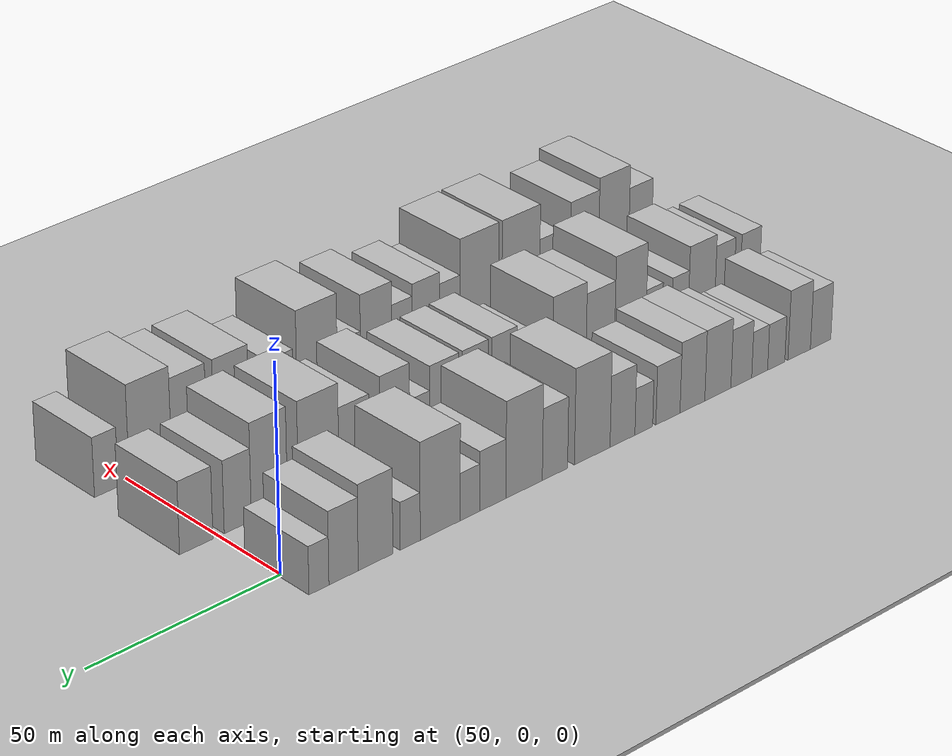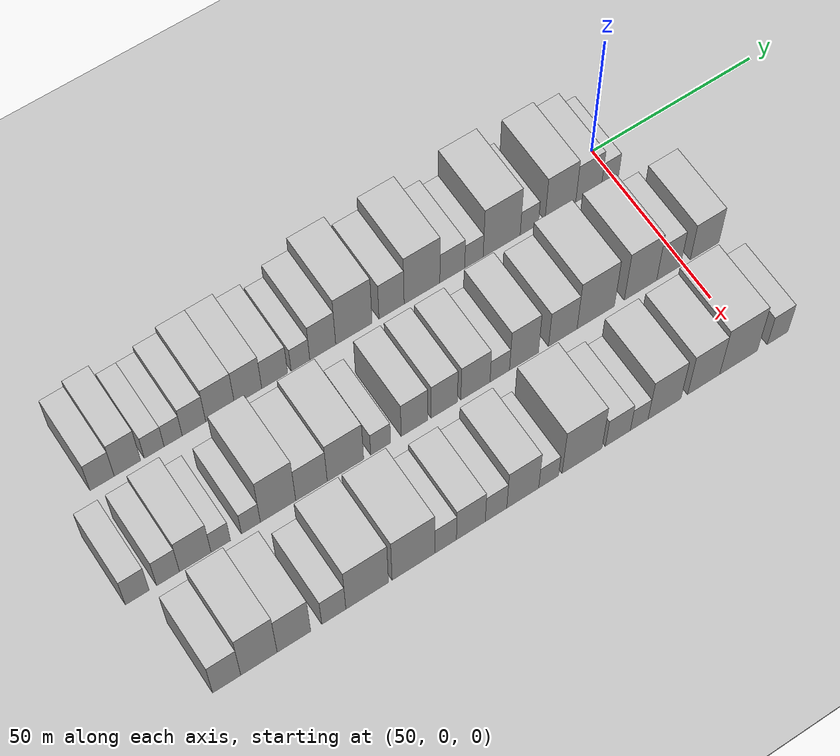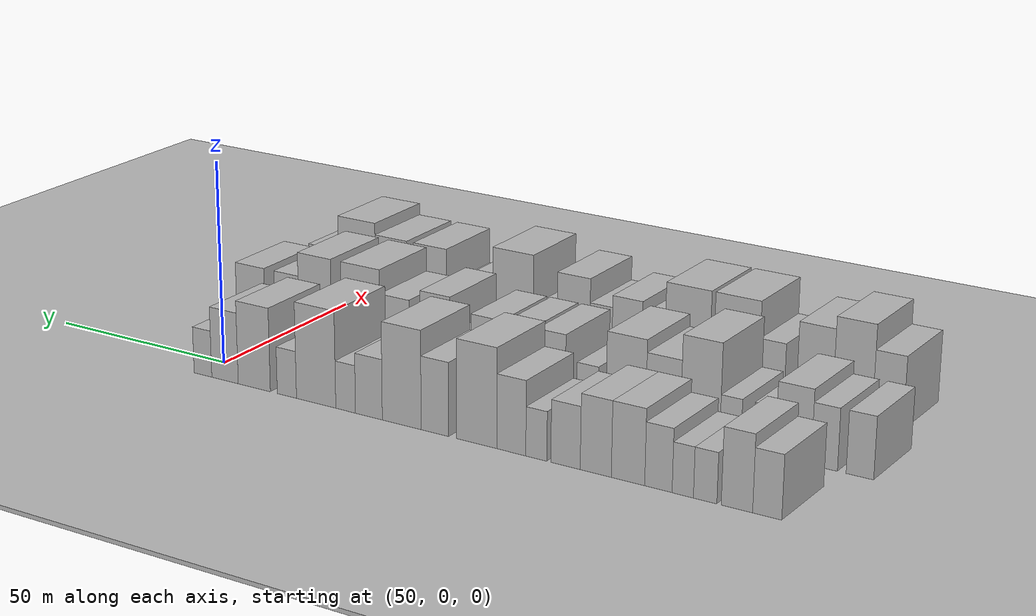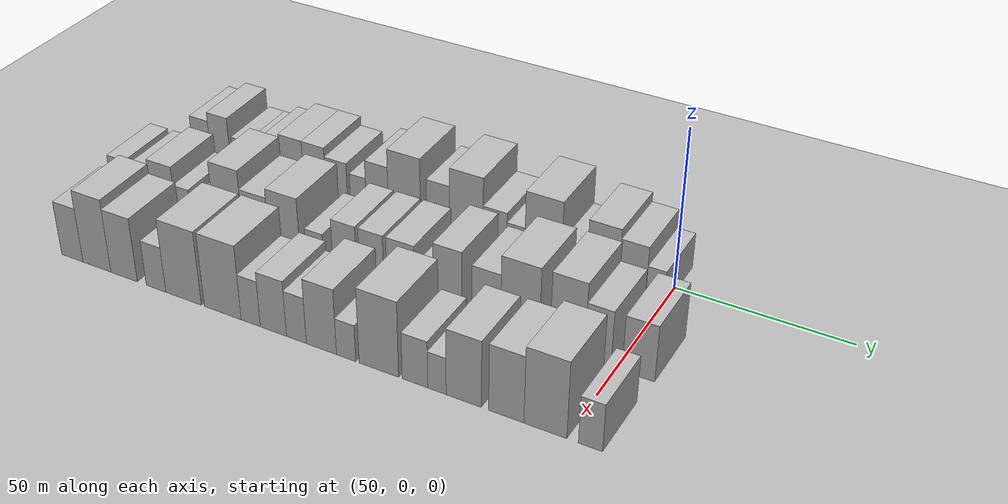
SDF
<sdf version="1.6">
 <world name="default">
  <include><name>ground_plane_1</name><uri>model://HANNAS_ground_plane</uri></include>
  <include>
   <name>ground_plane_2</name>
   <uri>model://HANNAS_ground_plane</uri>
   <pose>100 0 0  0 0 0</pose>
  </include>
  <model name="building_21">
   <static>1</static>
   <pose>50.0000 -148.6712 0 0.000000 0.000000 0.000000</pose>
   <link name="link">
    <pose>0 0 7.50 0 0 0</pose>
    <collision name="collision"><geometry><box><size>20.0000 6.6050 15.0000</size></box></geometry></collision>
    <visual name="visual">
     <cast_shadows>0</cast_shadows>
     <geometry><box><size>20.0000 6.6050 15.0000</size></box></geometry>
     <material>
      <script>
       <uri>model://HANNAS_wall/materials/scripts</uri>
       <uri>model://HANNAS_wall/materials/textures</uri>
       <name>vrc/HANNAS_wall</name>
      </script>
     </material>
    </visual>
   </link>
  </model>
  <model name="building_22">
   <static>1</static>
   <pose>50.0000 -141.7651 0 0.000000 0.000000 0.000000</pose>
   <link name="link">
    <pose>0 0 9.00 0 0 0</pose>
    <collision name="collision"><geometry><box><size>20.0000 7.2073 18.0000</size></box></geometry></collision>
    <visual name="visual">
     <cast_shadows>0</cast_shadows>
     <geometry><box><size>20.0000 7.2073 18.0000</size></box></geometry>
     <material>
      <script>
       <uri>model://HANNAS_wall/materials/scripts</uri>
       <uri>model://HANNAS_wall/materials/textures</uri>
       <name>vrc/HANNAS_wall</name>
      </script>
     </material>
    </visual>
   </link>
  </model>
  <model name="building_23">
   <static>1</static>
   <pose>50.0000 -134.4319 0 0.000000 0.000000 0.000000</pose>
   <link name="link">
    <pose>0 0 6.00 0 0 0</pose>
    <collision name="collision"><geometry><box><size>20.0000 5.4589 12.0000</size></box></geometry></collision>
    <visual name="visual">
     <cast_shadows>0</cast_shadows>
     <geometry><box><size>20.0000 5.4589 12.0000</size></box></geometry>
     <material>
      <script>
       <uri>model://HANNAS_wall/materials/scripts</uri>
       <uri>model://HANNAS_wall/materials/textures</uri>
       <name>vrc/HANNAS_wall</name>
      </script>
     </material>
    </visual>
   </link>
  </model>
  <model name="building_24">
   <static>1</static>
   <pose>50.0000 -129.1912 0 0.000000 0.000000 0.000000</pose>
   <link name="link">
    <pose>0 0 6.00 0 0 0</pose>
    <collision name="collision"><geometry><box><size>20.0000 5.0226 12.0000</size></box></geometry></collision>
    <visual name="visual">
     <cast_shadows>0</cast_shadows>
     <geometry><box><size>20.0000 5.0226 12.0000</size></box></geometry>
     <material>
      <script>
       <uri>model://HANNAS_wall/materials/scripts</uri>
       <uri>model://HANNAS_wall/materials/textures</uri>
       <name>vrc/HANNAS_wall</name>
      </script>
     </material>
    </visual>
   </link>
  </model>
  <model name="building_25">
   <static>1</static>
   <pose>50.0000 -123.4154 0 0.000000 0.000000 0.000000</pose>
   <link name="link">
    <pose>0 0 7.50 0 0 0</pose>
    <collision name="collision"><geometry><box><size>20.0000 6.5289 15.0000</size></box></geometry></collision>
    <visual name="visual">
     <cast_shadows>0</cast_shadows>
     <geometry><box><size>20.0000 6.5289 15.0000</size></box></geometry>
     <material>
      <script>
       <uri>model://HANNAS_wall/materials/scripts</uri>
       <uri>model://HANNAS_wall/materials/textures</uri>
       <name>vrc/HANNAS_wall</name>
      </script>
     </material>
    </visual>
   </link>
  </model>
  <model name="building_26">
   <static>1</static>
   <pose>50.0000 -116.1085 0 0.000000 0.000000 0.000000</pose>
   <link name="link">
    <pose>0 0 9.00 0 0 0</pose>
    <collision name="collision"><geometry><box><size>20.0000 8.0849 18.0000</size></box></geometry></collision>
    <visual name="visual">
     <cast_shadows>0</cast_shadows>
     <geometry><box><size>20.0000 8.0849 18.0000</size></box></geometry>
     <material>
      <script>
       <uri>model://HANNAS_wall/materials/scripts</uri>
       <uri>model://HANNAS_wall/materials/textures</uri>
       <name>vrc/HANNAS_wall</name>
      </script>
     </material>
    </visual>
   </link>
  </model>
  <model name="building_27">
   <static>1</static>
   <pose>50.0000 -108.2516 0 0.000000 0.000000 0.000000</pose>
   <link name="link">
    <pose>0 0 9.00 0 0 0</pose>
    <collision name="collision"><geometry><box><size>20.0000 7.6288 18.0000</size></box></geometry></collision>
    <visual name="visual">
     <cast_shadows>0</cast_shadows>
     <geometry><box><size>20.0000 7.6288 18.0000</size></box></geometry>
     <material>
      <script>
       <uri>model://HANNAS_wall/materials/scripts</uri>
       <uri>model://HANNAS_wall/materials/textures</uri>
       <name>vrc/HANNAS_wall</name>
      </script>
     </material>
    </visual>
   </link>
  </model>
  <model name="building_28">
   <static>1</static>
   <pose>50.0000 -100.7759 0 0.000000 0.000000 0.000000</pose>
   <link name="link">
    <pose>0 0 7.50 0 0 0</pose>
    <collision name="collision"><geometry><box><size>20.0000 7.3226 15.0000</size></box></geometry></collision>
    <visual name="visual">
     <cast_shadows>0</cast_shadows>
     <geometry><box><size>20.0000 7.3226 15.0000</size></box></geometry>
     <material>
      <script>
       <uri>model://HANNAS_wall/materials/scripts</uri>
       <uri>model://HANNAS_wall/materials/textures</uri>
       <name>vrc/HANNAS_wall</name>
      </script>
     </material>
    </visual>
   </link>
  </model>
  <model name="building_29">
   <static>1</static>
   <pose>50.0000 -93.4547 0 0.000000 0.000000 0.000000</pose>
   <link name="link">
    <pose>0 0 6.00 0 0 0</pose>
    <collision name="collision"><geometry><box><size>20.0000 5.3197 12.0000</size></box></geometry></collision>
    <visual name="visual">
     <cast_shadows>0</cast_shadows>
     <geometry><box><size>20.0000 5.3197 12.0000</size></box></geometry>
     <material>
      <script>
       <uri>model://HANNAS_wall/materials/scripts</uri>
       <uri>model://HANNAS_wall/materials/textures</uri>
       <name>vrc/HANNAS_wall</name>
      </script>
     </material>
    </visual>
   </link>
  </model>
  <model name="building_30">
   <static>1</static>
   <pose>50.0000 -87.0762 0 0.000000 0.000000 0.000000</pose>
   <link name="link">
    <pose>0 0 9.00 0 0 0</pose>
    <collision name="collision"><geometry><box><size>20.0000 7.4373 18.0000</size></box></geometry></collision>
    <visual name="visual">
     <cast_shadows>0</cast_shadows>
     <geometry><box><size>20.0000 7.4373 18.0000</size></box></geometry>
     <material>
      <script>
       <uri>model://HANNAS_wall/materials/scripts</uri>
       <uri>model://HANNAS_wall/materials/textures</uri>
       <name>vrc/HANNAS_wall</name>
      </script>
     </material>
    </visual>
   </link>
  </model>
  <model name="building_31">
   <static>1</static>
   <pose>50.0000 -78.0999 0 0.000000 0.000000 0.000000</pose>
   <link name="link">
    <pose>0 0 12.00 0 0 0</pose>
    <collision name="collision"><geometry><box><size>20.0000 10.5155 24.0000</size></box></geometry></collision>
    <visual name="visual">
     <cast_shadows>0</cast_shadows>
     <geometry><box><size>20.0000 10.5155 24.0000</size></box></geometry>
     <material>
      <script>
       <uri>model://HANNAS_wall/materials/scripts</uri>
       <uri>model://HANNAS_wall/materials/textures</uri>
       <name>vrc/HANNAS_wall</name>
      </script>
     </material>
    </visual>
   </link>
  </model>
  <model name="building_32">
   <static>1</static>
   <pose>50.0000 -67.1724 0 0.000000 0.000000 0.000000</pose>
   <link name="link">
    <pose>0 0 9.00 0 0 0</pose>
    <collision name="collision"><geometry><box><size>20.0000 7.3393 18.0000</size></box></geometry></collision>
    <visual name="visual">
     <cast_shadows>0</cast_shadows>
     <geometry><box><size>20.0000 7.3393 18.0000</size></box></geometry>
     <material>
      <script>
       <uri>model://HANNAS_wall/materials/scripts</uri>
       <uri>model://HANNAS_wall/materials/textures</uri>
       <name>vrc/HANNAS_wall</name>
      </script>
     </material>
    </visual>
   </link>
  </model>
  <model name="building_33">
   <static>1</static>
   <pose>50.0000 -58.2505 0 0.000000 0.000000 0.000000</pose>
   <link name="link">
    <pose>0 0 12.00 0 0 0</pose>
    <collision name="collision"><geometry><box><size>20.0000 10.5045 24.0000</size></box></geometry></collision>
    <visual name="visual">
     <cast_shadows>0</cast_shadows>
     <geometry><box><size>20.0000 10.5045 24.0000</size></box></geometry>
     <material>
      <script>
       <uri>model://HANNAS_wall/materials/scripts</uri>
       <uri>model://HANNAS_wall/materials/textures</uri>
       <name>vrc/HANNAS_wall</name>
      </script>
     </material>
    </visual>
   </link>
  </model>
  <model name="building_34">
   <static>1</static>
   <pose>50.0000 -49.3112 0 0.000000 0.000000 0.000000</pose>
   <link name="link">
    <pose>0 0 7.50 0 0 0</pose>
    <collision name="collision"><geometry><box><size>20.0000 7.3740 15.0000</size></box></geometry></collision>
    <visual name="visual">
     <cast_shadows>0</cast_shadows>
     <geometry><box><size>20.0000 7.3740 15.0000</size></box></geometry>
     <material>
      <script>
       <uri>model://HANNAS_wall/materials/scripts</uri>
       <uri>model://HANNAS_wall/materials/textures</uri>
       <name>vrc/HANNAS_wall</name>
      </script>
     </material>
    </visual>
   </link>
  </model>
  <model name="building_35">
   <static>1</static>
   <pose>50.0000 -42.8820 0 0.000000 0.000000 0.000000</pose>
   <link name="link">
    <pose>0 0 6.00 0 0 0</pose>
    <collision name="collision"><geometry><box><size>20.0000 5.4845 12.0000</size></box></geometry></collision>
    <visual name="visual">
     <cast_shadows>0</cast_shadows>
     <geometry><box><size>20.0000 5.4845 12.0000</size></box></geometry>
     <material>
      <script>
       <uri>model://HANNAS_wall/materials/scripts</uri>
       <uri>model://HANNAS_wall/materials/textures</uri>
       <name>vrc/HANNAS_wall</name>
      </script>
     </material>
    </visual>
   </link>
  </model>
  <model name="building_36">
   <static>1</static>
   <pose>50.0000 -34.5786 0 0.000000 0.000000 0.000000</pose>
   <link name="link">
    <pose>0 0 12.00 0 0 0</pose>
    <collision name="collision"><geometry><box><size>20.0000 11.1223 24.0000</size></box></geometry></collision>
    <visual name="visual">
     <cast_shadows>0</cast_shadows>
     <geometry><box><size>20.0000 11.1223 24.0000</size></box></geometry>
     <material>
      <script>
       <uri>model://HANNAS_wall/materials/scripts</uri>
       <uri>model://HANNAS_wall/materials/textures</uri>
       <name>vrc/HANNAS_wall</name>
      </script>
     </material>
    </visual>
   </link>
  </model>
  <model name="building_37">
   <static>1</static>
   <pose>50.0000 -26.2614 0 0.000000 0.000000 0.000000</pose>
   <link name="link">
    <pose>0 0 6.00 0 0 0</pose>
    <collision name="collision"><geometry><box><size>20.0000 5.5120 12.0000</size></box></geometry></collision>
    <visual name="visual">
     <cast_shadows>0</cast_shadows>
     <geometry><box><size>20.0000 5.5120 12.0000</size></box></geometry>
     <material>
      <script>
       <uri>model://HANNAS_wall/materials/scripts</uri>
       <uri>model://HANNAS_wall/materials/textures</uri>
       <name>vrc/HANNAS_wall</name>
      </script>
     </material>
    </visual>
   </link>
  </model>
  <model name="building_38">
   <static>1</static>
   <pose>50.0000 -16.8164 0 0.000000 0.000000 0.000000</pose>
   <link name="link">
    <pose>0 0 10.50 0 0 0</pose>
    <collision name="collision"><geometry><box><size>20.0000 9.3781 21.0000</size></box></geometry></collision>
    <visual name="visual">
     <cast_shadows>0</cast_shadows>
     <geometry><box><size>20.0000 9.3781 21.0000</size></box></geometry>
     <material>
      <script>
       <uri>model://HANNAS_wall/materials/scripts</uri>
       <uri>model://HANNAS_wall/materials/textures</uri>
       <name>vrc/HANNAS_wall</name>
      </script>
     </material>
    </visual>
   </link>
  </model>
  <model name="building_39">
   <static>1</static>
   <pose>50.0000 -8.2030 0 0.000000 0.000000 0.000000</pose>
   <link name="link">
    <pose>0 0 9.00 0 0 0</pose>
    <collision name="collision"><geometry><box><size>20.0000 7.8488 18.0000</size></box></geometry></collision>
    <visual name="visual">
     <cast_shadows>0</cast_shadows>
     <geometry><box><size>20.0000 7.8488 18.0000</size></box></geometry>
     <material>
      <script>
       <uri>model://HANNAS_wall/materials/scripts</uri>
       <uri>model://HANNAS_wall/materials/textures</uri>
       <name>vrc/HANNAS_wall</name>
      </script>
     </material>
    </visual>
   </link>
  </model>
  <model name="building_40">
   <static>1</static>
   <pose>50.0000 -1.6284 0 0.000000 0.000000 0.000000</pose>
   <link name="link">
    <pose>0 0 6.00 0 0 0</pose>
    <collision name="collision"><geometry><box><size>20.0000 5.3003 12.0000</size></box></geometry></collision>
    <visual name="visual">
     <cast_shadows>0</cast_shadows>
     <geometry><box><size>20.0000 5.3003 12.0000</size></box></geometry>
     <material>
      <script>
       <uri>model://HANNAS_wall/materials/scripts</uri>
       <uri>model://HANNAS_wall/materials/textures</uri>
       <name>vrc/HANNAS_wall</name>
      </script>
     </material>
    </visual>
   </link>
  </model>
  <model name="building_104">
   <static>1</static>
   <pose>79.0000 -156.1672 0 0.000000 0.000000 0.000000</pose>
   <link name="link">
    <pose>0 0 7.50 0 0 0</pose>
    <collision name="collision"><geometry><box><size>20.0000 6.3523 15.0000</size></box></geometry></collision>
    <visual name="visual">
     <cast_shadows>0</cast_shadows>
     <geometry><box><size>20.0000 6.3523 15.0000</size></box></geometry>
     <material>
      <script>
       <uri>model://HANNAS_wall/materials/scripts</uri>
       <uri>model://HANNAS_wall/materials/textures</uri>
       <name>vrc/HANNAS_wall</name>
      </script>
     </material>
    </visual>
   </link>
  </model>
  <model name="building_105">
   <static>1</static>
   <pose>79.0000 -147.9154 0 0.000000 0.000000 0.000000</pose>
   <link name="link">
    <pose>0 0 7.50 0 0 0</pose>
    <collision name="collision"><geometry><box><size>20.0000 6.1512 15.0000</size></box></geometry></collision>
    <visual name="visual">
     <cast_shadows>0</cast_shadows>
     <geometry><box><size>20.0000 6.1512 15.0000</size></box></geometry>
     <material>
      <script>
       <uri>model://HANNAS_wall/materials/scripts</uri>
       <uri>model://HANNAS_wall/materials/textures</uri>
       <name>vrc/HANNAS_wall</name>
      </script>
     </material>
    </visual>
   </link>
  </model>
  <model name="building_106">
   <static>1</static>
   <pose>79.0000 -140.5722 0 0.000000 0.000000 0.000000</pose>
   <link name="link">
    <pose>0 0 9.00 0 0 0</pose>
    <collision name="collision"><geometry><box><size>20.0000 8.5352 18.0000</size></box></geometry></collision>
    <visual name="visual">
     <cast_shadows>0</cast_shadows>
     <geometry><box><size>20.0000 8.5352 18.0000</size></box></geometry>
     <material>
      <script>
       <uri>model://HANNAS_wall/materials/scripts</uri>
       <uri>model://HANNAS_wall/materials/textures</uri>
       <name>vrc/HANNAS_wall</name>
      </script>
     </material>
    </visual>
   </link>
  </model>
  <model name="building_107">
   <static>1</static>
   <pose>79.0000 -133.6643 0 0.000000 0.000000 0.000000</pose>
   <link name="link">
    <pose>0 0 6.00 0 0 0</pose>
    <collision name="collision"><geometry><box><size>20.0000 5.2806 12.0000</size></box></geometry></collision>
    <visual name="visual">
     <cast_shadows>0</cast_shadows>
     <geometry><box><size>20.0000 5.2806 12.0000</size></box></geometry>
     <material>
      <script>
       <uri>model://HANNAS_wall/materials/scripts</uri>
       <uri>model://HANNAS_wall/materials/textures</uri>
       <name>vrc/HANNAS_wall</name>
      </script>
     </material>
    </visual>
   </link>
  </model>
  <model name="building_108">
   <static>1</static>
   <pose>79.0000 -125.4299 0 0.000000 0.000000 0.000000</pose>
   <link name="link">
    <pose>0 0 6.00 0 0 0</pose>
    <collision name="collision"><geometry><box><size>20.0000 5.1881 12.0000</size></box></geometry></collision>
    <visual name="visual">
     <cast_shadows>0</cast_shadows>
     <geometry><box><size>20.0000 5.1881 12.0000</size></box></geometry>
     <material>
      <script>
       <uri>model://HANNAS_wall/materials/scripts</uri>
       <uri>model://HANNAS_wall/materials/textures</uri>
       <name>vrc/HANNAS_wall</name>
      </script>
     </material>
    </visual>
   </link>
  </model>
  <model name="building_109">
   <static>1</static>
   <pose>79.0000 -117.9590 0 0.000000 0.000000 0.000000</pose>
   <link name="link">
    <pose>0 0 12.00 0 0 0</pose>
    <collision name="collision"><geometry><box><size>20.0000 9.7539 24.0000</size></box></geometry></collision>
    <visual name="visual">
     <cast_shadows>0</cast_shadows>
     <geometry><box><size>20.0000 9.7539 24.0000</size></box></geometry>
     <material>
      <script>
       <uri>model://HANNAS_wall/materials/scripts</uri>
       <uri>model://HANNAS_wall/materials/textures</uri>
       <name>vrc/HANNAS_wall</name>
      </script>
     </material>
    </visual>
   </link>
  </model>
  <model name="building_110">
   <static>1</static>
   <pose>79.0000 -108.6971 0 0.000000 0.000000 0.000000</pose>
   <link name="link">
    <pose>0 0 9.00 0 0 0</pose>
    <collision name="collision"><geometry><box><size>20.0000 8.7699 18.0000</size></box></geometry></collision>
    <visual name="visual">
     <cast_shadows>0</cast_shadows>
     <geometry><box><size>20.0000 8.7699 18.0000</size></box></geometry>
     <material>
      <script>
       <uri>model://HANNAS_wall/materials/scripts</uri>
       <uri>model://HANNAS_wall/materials/textures</uri>
       <name>vrc/HANNAS_wall</name>
      </script>
     </material>
    </visual>
   </link>
  </model>
  <model name="building_111">
   <static>1</static>
   <pose>79.0000 -99.2055 0 0.000000 0.000000 0.000000</pose>
   <link name="link">
    <pose>0 0 10.50 0 0 0</pose>
    <collision name="collision"><geometry><box><size>20.0000 10.2134 21.0000</size></box></geometry></collision>
    <visual name="visual">
     <cast_shadows>0</cast_shadows>
     <geometry><box><size>20.0000 10.2134 21.0000</size></box></geometry>
     <material>
      <script>
       <uri>model://HANNAS_wall/materials/scripts</uri>
       <uri>model://HANNAS_wall/materials/textures</uri>
       <name>vrc/HANNAS_wall</name>
      </script>
     </material>
    </visual>
   </link>
  </model>
  <model name="building_112">
   <static>1</static>
   <pose>79.0000 -89.2821 0 0.000000 0.000000 0.000000</pose>
   <link name="link">
    <pose>0 0 6.00 0 0 0</pose>
    <collision name="collision"><geometry><box><size>20.0000 5.6333 12.0000</size></box></geometry></collision>
    <visual name="visual">
     <cast_shadows>0</cast_shadows>
     <geometry><box><size>20.0000 5.6333 12.0000</size></box></geometry>
     <material>
      <script>
       <uri>model://HANNAS_wall/materials/scripts</uri>
       <uri>model://HANNAS_wall/materials/textures</uri>
       <name>vrc/HANNAS_wall</name>
      </script>
     </material>
    </visual>
   </link>
  </model>
  <model name="building_113">
   <static>1</static>
   <pose>79.0000 -79.6805 0 0.000000 0.000000 0.000000</pose>
   <link name="link">
    <pose>0 0 9.00 0 0 0</pose>
    <collision name="collision"><geometry><box><size>20.0000 7.5698 18.0000</size></box></geometry></collision>
    <visual name="visual">
     <cast_shadows>0</cast_shadows>
     <geometry><box><size>20.0000 7.5698 18.0000</size></box></geometry>
     <material>
      <script>
       <uri>model://HANNAS_wall/materials/scripts</uri>
       <uri>model://HANNAS_wall/materials/textures</uri>
       <name>vrc/HANNAS_wall</name>
      </script>
     </material>
    </visual>
   </link>
  </model>
  <model name="building_114">
   <static>1</static>
   <pose>79.0000 -71.1362 0 0.000000 0.000000 0.000000</pose>
   <link name="link">
    <pose>0 0 9.00 0 0 0</pose>
    <collision name="collision"><geometry><box><size>20.0000 7.5188 18.0000</size></box></geometry></collision>
    <visual name="visual">
     <cast_shadows>0</cast_shadows>
     <geometry><box><size>20.0000 7.5188 18.0000</size></box></geometry>
     <material>
      <script>
       <uri>model://HANNAS_wall/materials/scripts</uri>
       <uri>model://HANNAS_wall/materials/textures</uri>
       <name>vrc/HANNAS_wall</name>
      </script>
     </material>
    </visual>
   </link>
  </model>
  <model name="building_115">
   <static>1</static>
   <pose>79.0000 -62.1459 0 0.000000 0.000000 0.000000</pose>
   <link name="link">
    <pose>0 0 9.00 0 0 0</pose>
    <collision name="collision"><geometry><box><size>20.0000 8.4619 18.0000</size></box></geometry></collision>
    <visual name="visual">
     <cast_shadows>0</cast_shadows>
     <geometry><box><size>20.0000 8.4619 18.0000</size></box></geometry>
     <material>
      <script>
       <uri>model://HANNAS_wall/materials/scripts</uri>
       <uri>model://HANNAS_wall/materials/textures</uri>
       <name>vrc/HANNAS_wall</name>
      </script>
     </material>
    </visual>
   </link>
  </model>
  <model name="building_116">
   <static>1</static>
   <pose>79.0000 -55.0690 0 0.000000 0.000000 0.000000</pose>
   <link name="link">
    <pose>0 0 6.00 0 0 0</pose>
    <collision name="collision"><geometry><box><size>20.0000 5.6919 12.0000</size></box></geometry></collision>
    <visual name="visual">
     <cast_shadows>0</cast_shadows>
     <geometry><box><size>20.0000 5.6919 12.0000</size></box></geometry>
     <material>
      <script>
       <uri>model://HANNAS_wall/materials/scripts</uri>
       <uri>model://HANNAS_wall/materials/textures</uri>
       <name>vrc/HANNAS_wall</name>
      </script>
     </material>
    </visual>
   </link>
  </model>
  <model name="building_117">
   <static>1</static>
   <pose>79.0000 -47.9793 0 0.000000 0.000000 0.000000</pose>
   <link name="link">
    <pose>0 0 10.50 0 0 0</pose>
    <collision name="collision"><geometry><box><size>20.0000 8.4876 21.0000</size></box></geometry></collision>
    <visual name="visual">
     <cast_shadows>0</cast_shadows>
     <geometry><box><size>20.0000 8.4876 21.0000</size></box></geometry>
     <material>
      <script>
       <uri>model://HANNAS_wall/materials/scripts</uri>
       <uri>model://HANNAS_wall/materials/textures</uri>
       <name>vrc/HANNAS_wall</name>
      </script>
     </material>
    </visual>
   </link>
  </model>
  <model name="building_118">
   <static>1</static>
   <pose>79.0000 -36.5077 0 0.000000 0.000000 0.000000</pose>
   <link name="link">
    <pose>0 0 9.00 0 0 0</pose>
    <collision name="collision"><geometry><box><size>20.0000 8.4556 18.0000</size></box></geometry></collision>
    <visual name="visual">
     <cast_shadows>0</cast_shadows>
     <geometry><box><size>20.0000 8.4556 18.0000</size></box></geometry>
     <material>
      <script>
       <uri>model://HANNAS_wall/materials/scripts</uri>
       <uri>model://HANNAS_wall/materials/textures</uri>
       <name>vrc/HANNAS_wall</name>
      </script>
     </material>
    </visual>
   </link>
  </model>
  <model name="building_119">
   <static>1</static>
   <pose>79.0000 -26.6929 0 0.000000 0.000000 0.000000</pose>
   <link name="link">
    <pose>0 0 12.00 0 0 0</pose>
    <collision name="collision"><geometry><box><size>20.0000 11.1740 24.0000</size></box></geometry></collision>
    <visual name="visual">
     <cast_shadows>0</cast_shadows>
     <geometry><box><size>20.0000 11.1740 24.0000</size></box></geometry>
     <material>
      <script>
       <uri>model://HANNAS_wall/materials/scripts</uri>
       <uri>model://HANNAS_wall/materials/textures</uri>
       <name>vrc/HANNAS_wall</name>
      </script>
     </material>
    </visual>
   </link>
  </model>
  <model name="building_120">
   <static>1</static>
   <pose>79.0000 -13.2150 0 0.000000 0.000000 0.000000</pose>
   <link name="link">
    <pose>0 0 12.00 0 0 0</pose>
    <collision name="collision"><geometry><box><size>20.0000 9.7818 24.0000</size></box></geometry></collision>
    <visual name="visual">
     <cast_shadows>0</cast_shadows>
     <geometry><box><size>20.0000 9.7818 24.0000</size></box></geometry>
     <material>
      <script>
       <uri>model://HANNAS_wall/materials/scripts</uri>
       <uri>model://HANNAS_wall/materials/textures</uri>
       <name>vrc/HANNAS_wall</name>
      </script>
     </material>
    </visual>
   </link>
  </model>
  <model name="building_121">
   <static>1</static>
   <pose>79.0000 -4.6803 0 0.000000 0.000000 0.000000</pose>
   <link name="link">
    <pose>0 0 9.00 0 0 0</pose>
    <collision name="collision"><geometry><box><size>20.0000 7.2876 18.0000</size></box></geometry></collision>
    <visual name="visual">
     <cast_shadows>0</cast_shadows>
     <geometry><box><size>20.0000 7.2876 18.0000</size></box></geometry>
     <material>
      <script>
       <uri>model://HANNAS_wall/materials/scripts</uri>
       <uri>model://HANNAS_wall/materials/textures</uri>
       <name>vrc/HANNAS_wall</name>
      </script>
     </material>
    </visual>
   </link>
  </model>
  <model name="building_122">
   <static>1</static>
   <pose>79.0000 6.3690 0 0.000000 0.000000 0.000000</pose>
   <link name="link">
    <pose>0 0 9.00 0 0 0</pose>
    <collision name="collision"><geometry><box><size>20.0000 8.8111 18.0000</size></box></geometry></collision>
    <visual name="visual">
     <cast_shadows>0</cast_shadows>
     <geometry><box><size>20.0000 8.8111 18.0000</size></box></geometry>
     <material>
      <script>
       <uri>model://HANNAS_wall/materials/scripts</uri>
       <uri>model://HANNAS_wall/materials/textures</uri>
       <name>vrc/HANNAS_wall</name>
      </script>
     </material>
    </visual>
   </link>
  </model>
  <model name="building_174">
   <static>1</static>
   <pose>108.0000 -149.8106 0 0.000000 0.000000 0.000000</pose>
   <link name="link">
    <pose>0 0 9.00 0 0 0</pose>
    <collision name="collision"><geometry><box><size>20.0000 7.5043 18.0000</size></box></geometry></collision>
    <visual name="visual">
     <cast_shadows>0</cast_shadows>
     <geometry><box><size>20.0000 7.5043 18.0000</size></box></geometry>
     <material>
      <script>
       <uri>model://HANNAS_wall/materials/scripts</uri>
       <uri>model://HANNAS_wall/materials/textures</uri>
       <name>vrc/HANNAS_wall</name>
      </script>
     </material>
    </visual>
   </link>
  </model>
  <model name="building_175">
   <static>1</static>
   <pose>108.0000 -141.2060 0 0.000000 0.000000 0.000000</pose>
   <link name="link">
    <pose>0 0 12.00 0 0 0</pose>
    <collision name="collision"><geometry><box><size>20.0000 9.7048 24.0000</size></box></geometry></collision>
    <visual name="visual">
     <cast_shadows>0</cast_shadows>
     <geometry><box><size>20.0000 9.7048 24.0000</size></box></geometry>
     <material>
      <script>
       <uri>model://HANNAS_wall/materials/scripts</uri>
       <uri>model://HANNAS_wall/materials/textures</uri>
       <name>vrc/HANNAS_wall</name>
      </script>
     </material>
    </visual>
   </link>
  </model>
  <model name="building_176">
   <static>1</static>
   <pose>108.0000 -131.8442 0 0.000000 0.000000 0.000000</pose>
   <link name="link">
    <pose>0 0 10.50 0 0 0</pose>
    <collision name="collision"><geometry><box><size>20.0000 9.0188 21.0000</size></box></geometry></collision>
    <visual name="visual">
     <cast_shadows>0</cast_shadows>
     <geometry><box><size>20.0000 9.0188 21.0000</size></box></geometry>
     <material>
      <script>
       <uri>model://HANNAS_wall/materials/scripts</uri>
       <uri>model://HANNAS_wall/materials/textures</uri>
       <name>vrc/HANNAS_wall</name>
      </script>
     </material>
    </visual>
   </link>
  </model>
  <model name="building_177">
   <static>1</static>
   <pose>108.0000 -121.0579 0 0.000000 0.000000 0.000000</pose>
   <link name="link">
    <pose>0 0 7.50 0 0 0</pose>
    <collision name="collision"><geometry><box><size>20.0000 6.5538 15.0000</size></box></geometry></collision>
    <visual name="visual">
     <cast_shadows>0</cast_shadows>
     <geometry><box><size>20.0000 6.5538 15.0000</size></box></geometry>
     <material>
      <script>
       <uri>model://HANNAS_wall/materials/scripts</uri>
       <uri>model://HANNAS_wall/materials/textures</uri>
       <name>vrc/HANNAS_wall</name>
      </script>
     </material>
    </visual>
   </link>
  </model>
  <model name="building_178">
   <static>1</static>
   <pose>108.0000 -111.9389 0 0.000000 0.000000 0.000000</pose>
   <link name="link">
    <pose>0 0 12.00 0 0 0</pose>
    <collision name="collision"><geometry><box><size>20.0000 11.6842 24.0000</size></box></geometry></collision>
    <visual name="visual">
     <cast_shadows>0</cast_shadows>
     <geometry><box><size>20.0000 11.6842 24.0000</size></box></geometry>
     <material>
      <script>
       <uri>model://HANNAS_wall/materials/scripts</uri>
       <uri>model://HANNAS_wall/materials/textures</uri>
       <name>vrc/HANNAS_wall</name>
      </script>
     </material>
    </visual>
   </link>
  </model>
  <model name="building_179">
   <static>1</static>
   <pose>108.0000 -99.1921 0 0.000000 0.000000 0.000000</pose>
   <link name="link">
    <pose>0 0 12.00 0 0 0</pose>
    <collision name="collision"><geometry><box><size>20.0000 11.8094 24.0000</size></box></geometry></collision>
    <visual name="visual">
     <cast_shadows>0</cast_shadows>
     <geometry><box><size>20.0000 11.8094 24.0000</size></box></geometry>
     <material>
      <script>
       <uri>model://HANNAS_wall/materials/scripts</uri>
       <uri>model://HANNAS_wall/materials/textures</uri>
       <name>vrc/HANNAS_wall</name>
      </script>
     </material>
    </visual>
   </link>
  </model>
  <model name="building_180">
   <static>1</static>
   <pose>108.0000 -90.2494 0 0.000000 0.000000 0.000000</pose>
   <link name="link">
    <pose>0 0 7.50 0 0 0</pose>
    <collision name="collision"><geometry><box><size>20.0000 6.0759 15.0000</size></box></geometry></collision>
    <visual name="visual">
     <cast_shadows>0</cast_shadows>
     <geometry><box><size>20.0000 6.0759 15.0000</size></box></geometry>
     <material>
      <script>
       <uri>model://HANNAS_wall/materials/scripts</uri>
       <uri>model://HANNAS_wall/materials/textures</uri>
       <name>vrc/HANNAS_wall</name>
      </script>
     </material>
    </visual>
   </link>
  </model>
  <model name="building_181">
   <static>1</static>
   <pose>108.0000 -83.1579 0 0.000000 0.000000 0.000000</pose>
   <link name="link">
    <pose>0 0 9.00 0 0 0</pose>
    <collision name="collision"><geometry><box><size>20.0000 8.1072 18.0000</size></box></geometry></collision>
    <visual name="visual">
     <cast_shadows>0</cast_shadows>
     <geometry><box><size>20.0000 8.1072 18.0000</size></box></geometry>
     <material>
      <script>
       <uri>model://HANNAS_wall/materials/scripts</uri>
       <uri>model://HANNAS_wall/materials/textures</uri>
       <name>vrc/HANNAS_wall</name>
      </script>
     </material>
    </visual>
   </link>
  </model>
  <model name="building_182">
   <static>1</static>
   <pose>108.0000 -76.0505 0 0.000000 0.000000 0.000000</pose>
   <link name="link">
    <pose>0 0 7.50 0 0 0</pose>
    <collision name="collision"><geometry><box><size>20.0000 6.1076 15.0000</size></box></geometry></collision>
    <visual name="visual">
     <cast_shadows>0</cast_shadows>
     <geometry><box><size>20.0000 6.1076 15.0000</size></box></geometry>
     <material>
      <script>
       <uri>model://HANNAS_wall/materials/scripts</uri>
       <uri>model://HANNAS_wall/materials/textures</uri>
       <name>vrc/HANNAS_wall</name>
      </script>
     </material>
    </visual>
   </link>
  </model>
  <model name="building_183">
   <static>1</static>
   <pose>108.0000 -68.4397 0 0.000000 0.000000 0.000000</pose>
   <link name="link">
    <pose>0 0 10.50 0 0 0</pose>
    <collision name="collision"><geometry><box><size>20.0000 9.1141 21.0000</size></box></geometry></collision>
    <visual name="visual">
     <cast_shadows>0</cast_shadows>
     <geometry><box><size>20.0000 9.1141 21.0000</size></box></geometry>
     <material>
      <script>
       <uri>model://HANNAS_wall/materials/scripts</uri>
       <uri>model://HANNAS_wall/materials/textures</uri>
       <name>vrc/HANNAS_wall</name>
      </script>
     </material>
    </visual>
   </link>
  </model>
  <model name="building_184">
   <static>1</static>
   <pose>108.0000 -61.0206 0 0.000000 0.000000 0.000000</pose>
   <link name="link">
    <pose>0 0 6.00 0 0 0</pose>
    <collision name="collision"><geometry><box><size>20.0000 5.7240 12.0000</size></box></geometry></collision>
    <visual name="visual">
     <cast_shadows>0</cast_shadows>
     <geometry><box><size>20.0000 5.7240 12.0000</size></box></geometry>
     <material>
      <script>
       <uri>model://HANNAS_wall/materials/scripts</uri>
       <uri>model://HANNAS_wall/materials/textures</uri>
       <name>vrc/HANNAS_wall</name>
      </script>
     </material>
    </visual>
   </link>
  </model>
  <model name="building_185">
   <static>1</static>
   <pose>108.0000 -51.3815 0 0.000000 0.000000 0.000000</pose>
   <link name="link">
    <pose>0 0 12.00 0 0 0</pose>
    <collision name="collision"><geometry><box><size>20.0000 11.5541 24.0000</size></box></geometry></collision>
    <visual name="visual">
     <cast_shadows>0</cast_shadows>
     <geometry><box><size>20.0000 11.5541 24.0000</size></box></geometry>
     <material>
      <script>
       <uri>model://HANNAS_wall/materials/scripts</uri>
       <uri>model://HANNAS_wall/materials/textures</uri>
       <name>vrc/HANNAS_wall</name>
      </script>
     </material>
    </visual>
   </link>
  </model>
  <model name="building_186">
   <static>1</static>
   <pose>108.0000 -40.9542 0 0.000000 0.000000 0.000000</pose>
   <link name="link">
    <pose>0 0 7.50 0 0 0</pose>
    <collision name="collision"><geometry><box><size>20.0000 7.3006 15.0000</size></box></geometry></collision>
    <visual name="visual">
     <cast_shadows>0</cast_shadows>
     <geometry><box><size>20.0000 7.3006 15.0000</size></box></geometry>
     <material>
      <script>
       <uri>model://HANNAS_wall/materials/scripts</uri>
       <uri>model://HANNAS_wall/materials/textures</uri>
       <name>vrc/HANNAS_wall</name>
      </script>
     </material>
    </visual>
   </link>
  </model>
  <model name="building_187">
   <static>1</static>
   <pose>108.0000 -34.7030 0 0.000000 0.000000 0.000000</pose>
   <link name="link">
    <pose>0 0 6.00 0 0 0</pose>
    <collision name="collision"><geometry><box><size>20.0000 5.2017 12.0000</size></box></geometry></collision>
    <visual name="visual">
     <cast_shadows>0</cast_shadows>
     <geometry><box><size>20.0000 5.2017 12.0000</size></box></geometry>
     <material>
      <script>
       <uri>model://HANNAS_wall/materials/scripts</uri>
       <uri>model://HANNAS_wall/materials/textures</uri>
       <name>vrc/HANNAS_wall</name>
      </script>
     </material>
    </visual>
   </link>
  </model>
  <model name="building_188">
   <static>1</static>
   <pose>108.0000 -27.2263 0 0.000000 0.000000 0.000000</pose>
   <link name="link">
    <pose>0 0 10.50 0 0 0</pose>
    <collision name="collision"><geometry><box><size>20.0000 9.7518 21.0000</size></box></geometry></collision>
    <visual name="visual">
     <cast_shadows>0</cast_shadows>
     <geometry><box><size>20.0000 9.7518 21.0000</size></box></geometry>
     <material>
      <script>
       <uri>model://HANNAS_wall/materials/scripts</uri>
       <uri>model://HANNAS_wall/materials/textures</uri>
       <name>vrc/HANNAS_wall</name>
      </script>
     </material>
    </visual>
   </link>
  </model>
  <model name="building_189">
   <static>1</static>
   <pose>108.0000 -15.5471 0 0.000000 0.000000 0.000000</pose>
   <link name="link">
    <pose>0 0 10.50 0 0 0</pose>
    <collision name="collision"><geometry><box><size>20.0000 9.6064 21.0000</size></box></geometry></collision>
    <visual name="visual">
     <cast_shadows>0</cast_shadows>
     <geometry><box><size>20.0000 9.6064 21.0000</size></box></geometry>
     <material>
      <script>
       <uri>model://HANNAS_wall/materials/scripts</uri>
       <uri>model://HANNAS_wall/materials/textures</uri>
       <name>vrc/HANNAS_wall</name>
      </script>
     </material>
    </visual>
   </link>
  </model>
  <model name="building_190">
   <static>1</static>
   <pose>108.0000 -5.0466 0 0.000000 0.000000 0.000000</pose>
   <link name="link">
    <pose>0 0 12.00 0 0 0</pose>
    <collision name="collision"><geometry><box><size>20.0000 11.3946 24.0000</size></box></geometry></collision>
    <visual name="visual">
     <cast_shadows>0</cast_shadows>
     <geometry><box><size>20.0000 11.3946 24.0000</size></box></geometry>
     <material>
      <script>
       <uri>model://HANNAS_wall/materials/scripts</uri>
       <uri>model://HANNAS_wall/materials/textures</uri>
       <name>vrc/HANNAS_wall</name>
      </script>
     </material>
    </visual>
   </link>
  </model>
  <model name="building_191">
   <static>1</static>
   <pose>108.0000 6.7974 0 0.000000 0.000000 0.000000</pose>
   <link name="link">
    <pose>0 0 7.50 0 0 0</pose>
    <collision name="collision"><geometry><box><size>20.0000 6.2934 15.0000</size></box></geometry></collision>
    <visual name="visual">
     <cast_shadows>0</cast_shadows>
     <geometry><box><size>20.0000 6.2934 15.0000</size></box></geometry>
     <material>
      <script>
       <uri>model://HANNAS_wall/materials/scripts</uri>
       <uri>model://HANNAS_wall/materials/textures</uri>
       <name>vrc/HANNAS_wall</name>
      </script>
     </material>
    </visual>
   </link>
  </model>
 </world>
</sdf>
